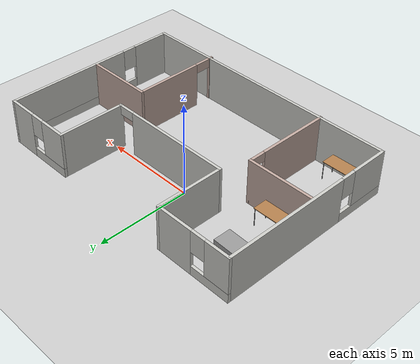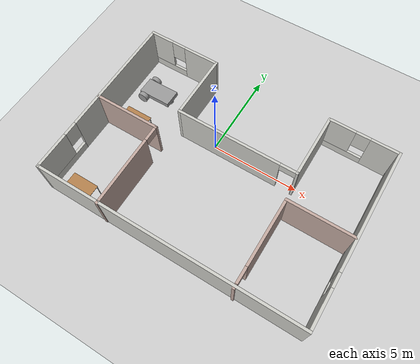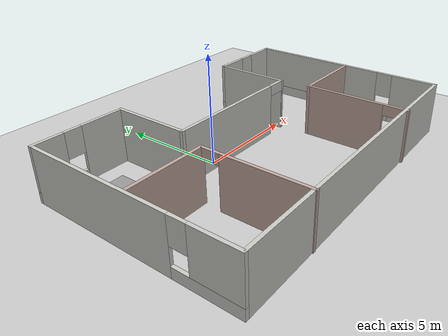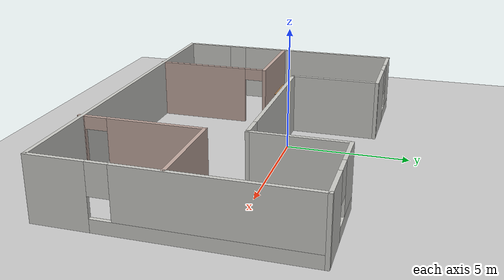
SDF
<sdf version="1.6">
 <world name="default">
  <model name="ground_plane">
   <static>1</static>
   <link name="link">
    <collision name="collision">
     <geometry><plane><normal>0 0 1</normal><size>100 100</size></plane></geometry>
     <surface>
      <contact><collide_bitmask>65535</collide_bitmask></contact>
      <friction><ode><mu>100</mu><mu2>50</mu2></ode></friction>
     </surface>
    </collision>
    <visual name="visual">
     <cast_shadows>0</cast_shadows>
     <geometry><plane><normal>0 0 1</normal><size>100 100</size></plane></geometry>
     <material>
      <script><uri>file://media/materials/scripts/gazebo.material</uri><name>Gazebo/Grey</name></script>
     </material>
    </visual>
   </link>
  </model>
  <model name="model">
   <pose>1.27977 -1.64783 0 0 -0 0</pose>
   <link name="Wall_1">
    <pose>-7.425 0.045582 0 0 0 -1.5708</pose>
    <visual name="Wall_1_Visual_0">
     <pose>-1.46661 0 1.25 0 -0 0</pose>
     <geometry><box><size>7.06677 0.15 2.5</size></box></geometry>
     <material>
      <script><uri>file://media/materials/scripts/gazebo.material</uri><name>Gazebo/CeilingTiled</name></script>
      <ambient>1 1 1 1</ambient>
     </material>
     <meta><layer>0</layer></meta>
    </visual>
    <collision name="Wall_1_Collision_0">
     <geometry><box><size>7.06677 0.15 2.5</size></box></geometry>
     <pose>-1.46661 0 1.25 0 -0 0</pose>
    </collision>
    <visual name="Wall_1_Visual_1">
     <pose>3.53339 0 0.25 0 -0 0</pose>
     <geometry><box><size>2.93323 0.15 0.5</size></box></geometry>
     <material>
      <script><uri>file://media/materials/scripts/gazebo.material</uri><name>Gazebo/CeilingTiled</name></script>
      <ambient>1 1 1 1</ambient>
     </material>
     <meta><layer>0</layer></meta>
    </visual>
    <collision name="Wall_1_Collision_1">
     <geometry><box><size>2.93323 0.15 0.5</size></box></geometry>
     <pose>3.53339 0 0.25 0 -0 0</pose>
    </collision>
    <visual name="Wall_1_Visual_2">
     <pose>3.93339 0 1.5 0 -0 0</pose>
     <geometry><box><size>2.13323 0.15 2</size></box></geometry>
     <material>
      <script><uri>file://media/materials/scripts/gazebo.material</uri><name>Gazebo/CeilingTiled</name></script>
      <ambient>1 1 1 1</ambient>
     </material>
     <meta><layer>0</layer></meta>
    </visual>
    <collision name="Wall_1_Collision_2">
     <geometry><box><size>2.13323 0.15 2</size></box></geometry>
     <pose>3.93339 0 1.5 0 -0 0</pose>
    </collision>
    <visual name="Wall_1_Visual_3">
     <pose>2.46677 0 1.9 0 -0 0</pose>
     <geometry><box><size>0.8 0.15 1.2</size></box></geometry>
     <material>
      <script><uri>file://media/materials/scripts/gazebo.material</uri><name>Gazebo/CeilingTiled</name></script>
      <ambient>1 1 1 1</ambient>
     </material>
     <meta><layer>0</layer></meta>
    </visual>
    <collision name="Wall_1_Collision_3">
     <geometry><box><size>0.8 0.15 1.2</size></box></geometry>
     <pose>2.46677 0 1.9 0 -0 0</pose>
    </collision>
   </link>
   <link name="Wall_10">
    <collision name="Wall_10_Collision">
     <geometry><box><size>3.75 0.15 2.5</size></box></geometry>
     <pose>0 0 1.25 0 -0 0</pose>
    </collision>
    <visual name="Wall_10_Visual">
     <pose>0 0 1.25 0 -0 0</pose>
     <geometry><box><size>3.75 0.15 2.5</size></box></geometry>
     <material>
      <script><uri>file://media/materials/scripts/gazebo.material</uri><name>Gazebo/Grey</name></script>
      <ambient>0.760784 0.662745 0.627451 1</ambient>
     </material>
     <meta><layer>0</layer></meta>
    </visual>
    <pose>-5.57831 -0.067079 0 0 -0 0</pose>
   </link>
   <link name="Wall_11">
    <pose>-3.77832 -2.49208 0 0 0 -1.5708</pose>
    <visual name="Wall_11_Visual_0">
     <pose>-2.47349 0 1.25 0 -0 0</pose>
     <geometry><box><size>0.05302 0.15 2.5</size></box></geometry>
     <material>
      <script><uri>file://media/materials/scripts/gazebo.material</uri><name>Gazebo/Grey</name></script>
      <ambient>0.760784 0.662745 0.627451 1</ambient>
     </material>
     <meta><layer>0</layer></meta>
    </visual>
    <collision name="Wall_11_Collision_0">
     <geometry><box><size>0.05302 0.15 2.5</size></box></geometry>
     <pose>-2.47349 0 1.25 0 -0 0</pose>
    </collision>
    <visual name="Wall_11_Visual_1">
     <pose>0.47651 0 1.25 0 -0 0</pose>
     <geometry><box><size>4.04698 0.15 2.5</size></box></geometry>
     <material>
      <script><uri>file://media/materials/scripts/gazebo.material</uri><name>Gazebo/Grey</name></script>
      <ambient>0.760784 0.662745 0.627451 1</ambient>
     </material>
     <meta><layer>0</layer></meta>
    </visual>
    <collision name="Wall_11_Collision_1">
     <geometry><box><size>4.04698 0.15 2.5</size></box></geometry>
     <pose>0.47651 0 1.25 0 -0 0</pose>
    </collision>
    <visual name="Wall_11_Visual_2">
     <pose>-1.99698 0 2.25 0 -0 0</pose>
     <geometry><box><size>0.9 0.15 0.5</size></box></geometry>
     <material>
      <script><uri>file://media/materials/scripts/gazebo.material</uri><name>Gazebo/Grey</name></script>
      <ambient>0.760784 0.662745 0.627451 1</ambient>
     </material>
     <meta><layer>0</layer></meta>
    </visual>
    <collision name="Wall_11_Collision_2">
     <geometry><box><size>0.9 0.15 0.5</size></box></geometry>
     <pose>-1.99698 0 2.25 0 -0 0</pose>
    </collision>
   </link>
   <link name="Wall_13">
    <collision name="Wall_13_Collision">
     <geometry><box><size>3.75 0.15 2.5</size></box></geometry>
     <pose>0 0 1.25 0 -0 0</pose>
    </collision>
    <visual name="Wall_13_Visual">
     <pose>0 0 1.25 0 -0 0</pose>
     <geometry><box><size>3.75 0.15 2.5</size></box></geometry>
     <material>
      <script><uri>file://media/materials/scripts/gazebo.material</uri><name>Gazebo/Grey</name></script>
      <ambient>0.760784 0.662745 0.627451 1</ambient>
     </material>
     <meta><layer>0</layer></meta>
    </visual>
    <pose>5.56162 -0.120582 0 0 -0 3.14159</pose>
   </link>
   <link name="Wall_14">
    <pose>3.76162 -2.54558 0 0 0 -1.5708</pose>
    <visual name="Wall_14_Visual_0">
     <pose>-0.587527 0 1.25 0 -0 0</pose>
     <geometry><box><size>3.82495 0.15 2.5</size></box></geometry>
     <material>
      <script><uri>file://media/materials/scripts/gazebo.material</uri><name>Gazebo/Grey</name></script>
      <ambient>0.760784 0.662745 0.627451 1</ambient>
     </material>
     <meta><layer>0</layer></meta>
    </visual>
    <collision name="Wall_14_Collision_0">
     <geometry><box><size>3.82495 0.15 2.5</size></box></geometry>
     <pose>-0.587527 0 1.25 0 -0 0</pose>
    </collision>
    <visual name="Wall_14_Visual_1">
     <pose>2.36247 0 1.25 0 -0 0</pose>
     <geometry><box><size>0.275054 0.15 2.5</size></box></geometry>
     <material>
      <script><uri>file://media/materials/scripts/gazebo.material</uri><name>Gazebo/Grey</name></script>
      <ambient>0.760784 0.662745 0.627451 1</ambient>
     </material>
     <meta><layer>0</layer></meta>
    </visual>
    <collision name="Wall_14_Collision_1">
     <geometry><box><size>0.275054 0.15 2.5</size></box></geometry>
     <pose>2.36247 0 1.25 0 -0 0</pose>
    </collision>
    <visual name="Wall_14_Visual_2">
     <pose>1.77495 0 2.25 0 -0 0</pose>
     <geometry><box><size>0.9 0.15 0.5</size></box></geometry>
     <material>
      <script><uri>file://media/materials/scripts/gazebo.material</uri><name>Gazebo/Grey</name></script>
      <ambient>0.760784 0.662745 0.627451 1</ambient>
     </material>
     <meta><layer>0</layer></meta>
    </visual>
    <collision name="Wall_14_Collision_2">
     <geometry><box><size>0.9 0.15 0.5</size></box></geometry>
     <pose>1.77495 0 2.25 0 -0 0</pose>
    </collision>
   </link>
   <link name="Wall_2">
    <collision name="Wall_2_Collision">
     <geometry><box><size>15 0.15 2.5</size></box></geometry>
     <pose>0 0 1.25 0 -0 0</pose>
    </collision>
    <visual name="Wall_2_Visual">
     <pose>0 0 1.25 0 -0 0</pose>
     <geometry><box><size>15 0.15 2.5</size></box></geometry>
     <material>
      <script><uri>file://media/materials/scripts/gazebo.material</uri><name>Gazebo/CeilingTiled</name></script>
      <ambient>1 1 1 1</ambient>
     </material>
     <meta><layer>0</layer></meta>
    </visual>
    <pose>0 -4.87942 0 0 -0 0</pose>
   </link>
   <link name="Wall_3">
    <pose>7.425 0.045582 0 0 -0 1.5708</pose>
    <visual name="Wall_3_Visual_0">
     <pose>-3.89326 0 1.25 0 -0 0</pose>
     <geometry><box><size>2.21348 0.15 2.5</size></box></geometry>
     <material>
      <script><uri>file://media/materials/scripts/gazebo.material</uri><name>Gazebo/CeilingTiled</name></script>
      <ambient>1 1 1 1</ambient>
     </material>
     <meta><layer>0</layer></meta>
    </visual>
    <collision name="Wall_3_Collision_0">
     <geometry><box><size>2.21348 0.15 2.5</size></box></geometry>
     <pose>-3.89326 0 1.25 0 -0 0</pose>
    </collision>
    <visual name="Wall_3_Visual_1">
     <pose>1.10674 0 0.25 0 -0 0</pose>
     <geometry><box><size>7.78652 0.15 0.5</size></box></geometry>
     <material>
      <script><uri>file://media/materials/scripts/gazebo.material</uri><name>Gazebo/CeilingTiled</name></script>
      <ambient>1 1 1 1</ambient>
     </material>
     <meta><layer>0</layer></meta>
    </visual>
    <collision name="Wall_3_Collision_1">
     <geometry><box><size>7.78652 0.15 0.5</size></box></geometry>
     <pose>1.10674 0 0.25 0 -0 0</pose>
    </collision>
    <visual name="Wall_3_Visual_2">
     <pose>1.50674 0 1.5 0 -0 0</pose>
     <geometry><box><size>6.98652 0.15 2</size></box></geometry>
     <material>
      <script><uri>file://media/materials/scripts/gazebo.material</uri><name>Gazebo/CeilingTiled</name></script>
      <ambient>1 1 1 1</ambient>
     </material>
     <meta><layer>0</layer></meta>
    </visual>
    <collision name="Wall_3_Collision_2">
     <geometry><box><size>6.98652 0.15 2</size></box></geometry>
     <pose>1.50674 0 1.5 0 -0 0</pose>
    </collision>
    <visual name="Wall_3_Visual_3">
     <pose>-2.38652 0 1.9 0 -0 0</pose>
     <geometry><box><size>0.8 0.15 1.2</size></box></geometry>
     <material>
      <script><uri>file://media/materials/scripts/gazebo.material</uri><name>Gazebo/CeilingTiled</name></script>
      <ambient>1 1 1 1</ambient>
     </material>
     <meta><layer>0</layer></meta>
    </visual>
    <collision name="Wall_3_Collision_3">
     <geometry><box><size>0.8 0.15 1.2</size></box></geometry>
     <pose>-2.38652 0 1.9 0 -0 0</pose>
    </collision>
   </link>
   <link name="Wall_4">
    <pose>5.5 4.97058 0 0 -0 3.14159</pose>
    <visual name="Wall_4_Visual_0">
     <pose>-1.18114 0 1.25 0 -0 0</pose>
     <geometry><box><size>1.63771 0.15 2.5</size></box></geometry>
     <material>
      <script><uri>file://media/materials/scripts/gazebo.material</uri><name>Gazebo/CeilingTiled</name></script>
      <ambient>1 1 1 1</ambient>
     </material>
     <meta><layer>0</layer></meta>
    </visual>
    <collision name="Wall_4_Collision_0">
     <geometry><box><size>1.63771 0.15 2.5</size></box></geometry>
     <pose>-1.18114 0 1.25 0 -0 0</pose>
    </collision>
    <visual name="Wall_4_Visual_1">
     <pose>0.818857 0 0.25 0 -0 0</pose>
     <geometry><box><size>2.36229 0.15 0.5</size></box></geometry>
     <material>
      <script><uri>file://media/materials/scripts/gazebo.material</uri><name>Gazebo/CeilingTiled</name></script>
      <ambient>1 1 1 1</ambient>
     </material>
     <meta><layer>0</layer></meta>
    </visual>
    <collision name="Wall_4_Collision_1">
     <geometry><box><size>2.36229 0.15 0.5</size></box></geometry>
     <pose>0.818857 0 0.25 0 -0 0</pose>
    </collision>
    <visual name="Wall_4_Visual_2">
     <pose>1.21886 0 1.5 0 -0 0</pose>
     <geometry><box><size>1.56229 0.15 2</size></box></geometry>
     <material>
      <script><uri>file://media/materials/scripts/gazebo.material</uri><name>Gazebo/CeilingTiled</name></script>
      <ambient>1 1 1 1</ambient>
     </material>
     <meta><layer>0</layer></meta>
    </visual>
    <collision name="Wall_4_Collision_2">
     <geometry><box><size>1.56229 0.15 2</size></box></geometry>
     <pose>1.21886 0 1.5 0 -0 0</pose>
    </collision>
    <visual name="Wall_4_Visual_3">
     <pose>0.037714 0 1.9 0 -0 0</pose>
     <geometry><box><size>0.8 0.15 1.2</size></box></geometry>
     <material>
      <script><uri>file://media/materials/scripts/gazebo.material</uri><name>Gazebo/CeilingTiled</name></script>
      <ambient>1 1 1 1</ambient>
     </material>
     <meta><layer>0</layer></meta>
    </visual>
    <collision name="Wall_4_Collision_3">
     <geometry><box><size>0.8 0.15 1.2</size></box></geometry>
     <pose>0.037714 0 1.9 0 -0 0</pose>
    </collision>
   </link>
   <link name="Wall_5">
    <collision name="Wall_5_Collision">
     <geometry><box><size>3.75 0.15 2.5</size></box></geometry>
     <pose>0 0 1.25 0 -0 0</pose>
    </collision>
    <visual name="Wall_5_Visual">
     <pose>0 0 1.25 0 -0 0</pose>
     <geometry><box><size>3.75 0.15 2.5</size></box></geometry>
     <material>
      <script><uri>file://media/materials/scripts/gazebo.material</uri><name>Gazebo/CeilingTiled</name></script>
      <ambient>1 1 1 1</ambient>
     </material>
     <meta><layer>0</layer></meta>
    </visual>
    <pose>3.575 3.17058 0 0 0 -1.5708</pose>
   </link>
   <link name="Wall_6">
    <pose>0.15 1.37058 0 0 -0 3.14159</pose>
    <visual name="Wall_6_Visual_0">
     <pose>-3.44071 0 1.25 0 -0 0</pose>
     <geometry><box><size>0.118576 0.15 2.5</size></box></geometry>
     <material>
      <script><uri>file://media/materials/scripts/gazebo.material</uri><name>Gazebo/CeilingTiled</name></script>
      <ambient>1 1 1 1</ambient>
     </material>
     <meta><layer>0</layer></meta>
    </visual>
    <collision name="Wall_6_Collision_0">
     <geometry><box><size>0.118576 0.15 2.5</size></box></geometry>
     <pose>-3.44071 0 1.25 0 -0 0</pose>
    </collision>
    <visual name="Wall_6_Visual_1">
     <pose>0.509288 0 1.25 0 -0 0</pose>
     <geometry><box><size>5.98142 0.15 2.5</size></box></geometry>
     <material>
      <script><uri>file://media/materials/scripts/gazebo.material</uri><name>Gazebo/CeilingTiled</name></script>
      <ambient>1 1 1 1</ambient>
     </material>
     <meta><layer>0</layer></meta>
    </visual>
    <collision name="Wall_6_Collision_1">
     <geometry><box><size>5.98142 0.15 2.5</size></box></geometry>
     <pose>0.509288 0 1.25 0 -0 0</pose>
    </collision>
    <visual name="Wall_6_Visual_2">
     <pose>-2.93142 0 2.25 0 -0 0</pose>
     <geometry><box><size>0.9 0.15 0.5</size></box></geometry>
     <material>
      <script><uri>file://media/materials/scripts/gazebo.material</uri><name>Gazebo/CeilingTiled</name></script>
      <ambient>1 1 1 1</ambient>
     </material>
     <meta><layer>0</layer></meta>
    </visual>
    <collision name="Wall_6_Collision_2">
     <geometry><box><size>0.9 0.15 0.5</size></box></geometry>
     <pose>-2.93142 0 2.25 0 -0 0</pose>
    </collision>
   </link>
   <link name="Wall_7">
    <collision name="Wall_7_Collision">
     <geometry><box><size>3.75 0.15 2.5</size></box></geometry>
     <pose>0 0 1.25 0 -0 0</pose>
    </collision>
    <visual name="Wall_7_Visual">
     <pose>0 0 1.25 0 -0 0</pose>
     <geometry><box><size>3.75 0.15 2.5</size></box></geometry>
     <material>
      <script><uri>file://media/materials/scripts/gazebo.material</uri><name>Gazebo/CeilingTiled</name></script>
      <ambient>1 1 1 1</ambient>
     </material>
     <meta><layer>0</layer></meta>
    </visual>
    <pose>-3.275 3.17058 0 0 -0 1.5708</pose>
   </link>
   <link name="Wall_8">
    <pose>-5.35 4.97058 0 0 -0 3.14159</pose>
    <visual name="Wall_8_Visual_0">
     <pose>-1.10351 0 1.25 0 -0 0</pose>
     <geometry><box><size>2.09299 0.15 2.5</size></box></geometry>
     <material>
      <script><uri>file://media/materials/scripts/gazebo.material</uri><name>Gazebo/CeilingTiled</name></script>
      <ambient>1 1 1 1</ambient>
     </material>
     <meta><layer>0</layer></meta>
    </visual>
    <collision name="Wall_8_Collision_0">
     <geometry><box><size>2.09299 0.15 2.5</size></box></geometry>
     <pose>-1.10351 0 1.25 0 -0 0</pose>
    </collision>
    <visual name="Wall_8_Visual_1">
     <pose>1.04649 0 0.25 0 -0 0</pose>
     <geometry><box><size>2.20701 0.15 0.5</size></box></geometry>
     <material>
      <script><uri>file://media/materials/scripts/gazebo.material</uri><name>Gazebo/CeilingTiled</name></script>
      <ambient>1 1 1 1</ambient>
     </material>
     <meta><layer>0</layer></meta>
    </visual>
    <collision name="Wall_8_Collision_1">
     <geometry><box><size>2.20701 0.15 0.5</size></box></geometry>
     <pose>1.04649 0 0.25 0 -0 0</pose>
    </collision>
    <visual name="Wall_8_Visual_2">
     <pose>1.44649 0 1.5 0 -0 0</pose>
     <geometry><box><size>1.40701 0.15 2</size></box></geometry>
     <material>
      <script><uri>file://media/materials/scripts/gazebo.material</uri><name>Gazebo/CeilingTiled</name></script>
      <ambient>1 1 1 1</ambient>
     </material>
     <meta><layer>0</layer></meta>
    </visual>
    <collision name="Wall_8_Collision_2">
     <geometry><box><size>1.40701 0.15 2</size></box></geometry>
     <pose>1.44649 0 1.5 0 -0 0</pose>
    </collision>
    <visual name="Wall_8_Visual_3">
     <pose>0.342986 0 1.9 0 -0 0</pose>
     <geometry><box><size>0.8 0.15 1.2</size></box></geometry>
     <material>
      <script><uri>file://media/materials/scripts/gazebo.material</uri><name>Gazebo/CeilingTiled</name></script>
      <ambient>1 1 1 1</ambient>
     </material>
     <meta><layer>0</layer></meta>
    </visual>
    <collision name="Wall_8_Collision_3">
     <geometry><box><size>0.8 0.15 1.2</size></box></geometry>
     <pose>0.342986 0 1.9 0 -0 0</pose>
    </collision>
   </link>
   <static>1</static>
  </model>
  <model name="table_2">
   <static>1</static>
   <link name="link">
    <collision name="surface">
     <pose>0 0 1 0 -0 0</pose>
     <geometry><box><size>1.5 0.8 0.03</size></box></geometry>
     <surface><friction><ode><mu>0.6</mu><mu2>0.6</mu2></ode></friction></surface>
    </collision>
    <visual name="visual1">
     <pose>0 0 1 0 -0 0</pose>
     <geometry><box><size>1.5 0.8 0.03</size></box></geometry>
     <material>
      <script><uri>file://media/materials/scripts/gazebo.material</uri><name>Gazebo/Wood</name></script>
     </material>
    </visual>
    <collision name="front_left_leg">
     <pose>0.68 0.38 0.5 0 -0 0</pose>
     <geometry><cylinder><radius>0.02</radius><length>1</length></cylinder></geometry>
    </collision>
    <visual name="front_left_leg">
     <pose>0.68 0.38 0.5 0 -0 0</pose>
     <geometry><cylinder><radius>0.02</radius><length>1</length></cylinder></geometry>
     <material>
      <script><uri>file://media/materials/scripts/gazebo.material</uri><name>Gazebo/Grey</name></script>
     </material>
    </visual>
    <collision name="front_right_leg">
     <pose>0.68 -0.38 0.5 0 -0 0</pose>
     <geometry><cylinder><radius>0.02</radius><length>1</length></cylinder></geometry>
    </collision>
    <visual name="front_right_leg">
     <pose>0.68 -0.38 0.5 0 -0 0</pose>
     <geometry><cylinder><radius>0.02</radius><length>1</length></cylinder></geometry>
     <material>
      <script><uri>file://media/materials/scripts/gazebo.material</uri><name>Gazebo/Grey</name></script>
     </material>
    </visual>
    <collision name="back_right_leg">
     <pose>-0.68 -0.38 0.5 0 -0 0</pose>
     <geometry><cylinder><radius>0.02</radius><length>1</length></cylinder></geometry>
    </collision>
    <visual name="back_right_leg">
     <pose>-0.68 -0.38 0.5 0 -0 0</pose>
     <geometry><cylinder><radius>0.02</radius><length>1</length></cylinder></geometry>
     <material>
      <script><uri>file://media/materials/scripts/gazebo.material</uri><name>Gazebo/Grey</name></script>
     </material>
    </visual>
    <collision name="back_left_leg">
     <pose>-0.68 0.38 0.5 0 -0 0</pose>
     <geometry><cylinder><radius>0.02</radius><length>1</length></cylinder></geometry>
    </collision>
    <visual name="back_left_leg">
     <pose>-0.68 0.38 0.5 0 -0 0</pose>
     <geometry><cylinder><radius>0.02</radius><length>1</length></cylinder></geometry>
     <material>
      <script><uri>file://media/materials/scripts/gazebo.material</uri><name>Gazebo/Grey</name></script>
     </material>
    </visual>
   </link>
   <pose>-4.41511 -5.93243 0 0 -0 0</pose>
  </model>
  <model name="table_3">
   <static>1</static>
   <link name="link">
    <collision name="surface">
     <pose>0 0 1 0 -0 0</pose>
     <geometry><box><size>1.5 0.8 0.03</size></box></geometry>
     <surface><friction><ode><mu>0.6</mu><mu2>0.6</mu2></ode></friction></surface>
    </collision>
    <visual name="visual1">
     <pose>0 0 1 0 -0 0</pose>
     <geometry><box><size>1.5 0.8 0.03</size></box></geometry>
     <material>
      <script><uri>file://media/materials/scripts/gazebo.material</uri><name>Gazebo/Wood</name></script>
     </material>
    </visual>
    <collision name="front_left_leg">
     <pose>0.68 0.38 0.5 0 -0 0</pose>
     <geometry><cylinder><radius>0.02</radius><length>1</length></cylinder></geometry>
    </collision>
    <visual name="front_left_leg">
     <pose>0.68 0.38 0.5 0 -0 0</pose>
     <geometry><cylinder><radius>0.02</radius><length>1</length></cylinder></geometry>
     <material>
      <script><uri>file://media/materials/scripts/gazebo.material</uri><name>Gazebo/Grey</name></script>
     </material>
    </visual>
    <collision name="front_right_leg">
     <pose>0.68 -0.38 0.5 0 -0 0</pose>
     <geometry><cylinder><radius>0.02</radius><length>1</length></cylinder></geometry>
    </collision>
    <visual name="front_right_leg">
     <pose>0.68 -0.38 0.5 0 -0 0</pose>
     <geometry><cylinder><radius>0.02</radius><length>1</length></cylinder></geometry>
     <material>
      <script><uri>file://media/materials/scripts/gazebo.material</uri><name>Gazebo/Grey</name></script>
     </material>
    </visual>
    <collision name="back_right_leg">
     <pose>-0.68 -0.38 0.5 0 -0 0</pose>
     <geometry><cylinder><radius>0.02</radius><length>1</length></cylinder></geometry>
    </collision>
    <visual name="back_right_leg">
     <pose>-0.68 -0.38 0.5 0 -0 0</pose>
     <geometry><cylinder><radius>0.02</radius><length>1</length></cylinder></geometry>
     <material>
      <script><uri>file://media/materials/scripts/gazebo.material</uri><name>Gazebo/Grey</name></script>
     </material>
    </visual>
    <collision name="back_left_leg">
     <pose>-0.68 0.38 0.5 0 -0 0</pose>
     <geometry><cylinder><radius>0.02</radius><length>1</length></cylinder></geometry>
    </collision>
    <visual name="back_left_leg">
     <pose>-0.68 0.38 0.5 0 -0 0</pose>
     <geometry><cylinder><radius>0.02</radius><length>1</length></cylinder></geometry>
     <material>
      <script><uri>file://media/materials/scripts/gazebo.material</uri><name>Gazebo/Grey</name></script>
     </material>
    </visual>
   </link>
   <pose>-4.44626 -1.13918 0 0 -0 0</pose>
  </model>
  <model name="model_2"><static>0</static><plugin name="welcome" filename="libWelcome.so"/></model>
  <model name="model_1_clone">
   <link name="link_0">
    <pose>0.178087 -1.52563 0.267494 0 -0 0</pose>
    <inertial>
     <mass>0.51884</mass>
     <inertia>
      <ixx>0.0443989</ixx>
      <ixy>0</ixy>
      <ixz>0</ixz>
      <iyy>0.161858</iyy>
      <iyz>0</iyz>
      <izz>0.199574</izz>
     </inertia>
    </inertial>
    <visual name="visual">
     <geometry><box><size>1.91475 0.97447 0.278011</size></box></geometry>
     <material>
      <lighting>1</lighting>
      <script><uri>file://media/materials/scripts/gazebo.material</uri><name>Gazebo/Grey</name></script>
      <shader type="pixel"><normal_map>__default__</normal_map></shader>
      <ambient>0.3 0.3 0.3 1</ambient>
      <diffuse>0.7 0.7 0.7 1</diffuse>
      <specular>0.01 0.01 0.01 1</specular>
      <emissive>0 0 0 1</emissive>
     </material>
    </visual>
    <collision name="collision">
     <geometry><box><size>1.91475 0.97447 0.278011</size></box></geometry>
     <surface>
      <friction>
       <ode><mu>1</mu><mu2>1</mu2><fdir1>0 0 0</fdir1><slip1>0</slip1><slip2>0</slip2></ode>
       <torsional>
        <coefficient>1</coefficient>
        <patch_radius>0</patch_radius>
        <surface_radius>0</surface_radius>
        <use_patch_radius>1</use_patch_radius>
        <ode><slip>0</slip></ode>
       </torsional>
      </friction>
      <bounce><restitution_coefficient>0</restitution_coefficient><threshold>1e+06</threshold></bounce>
      <contact>
       <collide_without_contact>0</collide_without_contact>
       <collide_without_contact_bitmask>1</collide_without_contact_bitmask>
       <collide_bitmask>1</collide_bitmask>
       <ode>
        <soft_cfm>0</soft_cfm>
        <soft_erp>0.2</soft_erp>
        <kp>1e+13</kp>
        <kd>1</kd>
        <max_vel>0.01</max_vel>
        <min_depth>0</min_depth>
       </ode>
       <bullet>
        <split_impulse>1</split_impulse>
        <split_impulse_penetration_threshold>-0.01</split_impulse_penetration_threshold>
        <soft_cfm>0</soft_cfm>
        <soft_erp>0.2</soft_erp>
        <kp>1e+13</kp>
        <kd>1</kd>
       </bullet>
      </contact>
     </surface>
    </collision>
   </link>
   <link name="link_1">
    <pose>-0.479288 -0.898366 0.167494 1.5707 -0 0</pose>
    <inertial>
     <mass>1</mass>
     <inertia><ixx>0.145833</ixx><ixy>0</ixy><ixz>0</ixz><iyy>0.145833</iyy><iyz>0</iyz><izz>0.125</izz></inertia>
    </inertial>
    <visual name="visual">
     <geometry><cylinder><radius>0.3</radius><length>0.25</length></cylinder></geometry>
     <material>
      <lighting>1</lighting>
      <script><uri>file://media/materials/scripts/gazebo.material</uri><name>Gazebo/Grey</name></script>
      <shader type="pixel"><normal_map>__default__</normal_map></shader>
      <ambient>0.3 0.3 0.3 1</ambient>
      <diffuse>0.7 0.7 0.7 1</diffuse>
      <specular>0.01 0.01 0.01 1</specular>
      <emissive>0 0 0 1</emissive>
     </material>
    </visual>
    <collision name="collision">
     <geometry><cylinder><radius>0.3</radius><length>0.25</length></cylinder></geometry>
     <surface>
      <friction>
       <ode><mu>1</mu><mu2>1</mu2><fdir1>0 0 0</fdir1><slip1>0</slip1><slip2>0</slip2></ode>
       <torsional>
        <coefficient>1</coefficient>
        <patch_radius>0</patch_radius>
        <surface_radius>0</surface_radius>
        <use_patch_radius>1</use_patch_radius>
        <ode><slip>0</slip></ode>
       </torsional>
      </friction>
      <bounce><restitution_coefficient>0</restitution_coefficient><threshold>1e+06</threshold></bounce>
      <contact>
       <collide_without_contact>0</collide_without_contact>
       <collide_without_contact_bitmask>1</collide_without_contact_bitmask>
       <collide_bitmask>1</collide_bitmask>
       <ode>
        <soft_cfm>0</soft_cfm>
        <soft_erp>0.2</soft_erp>
        <kp>1e+13</kp>
        <kd>1</kd>
        <max_vel>0.01</max_vel>
        <min_depth>0</min_depth>
       </ode>
       <bullet>
        <split_impulse>1</split_impulse>
        <split_impulse_penetration_threshold>-0.01</split_impulse_penetration_threshold>
        <soft_cfm>0</soft_cfm>
        <soft_erp>0.2</soft_erp>
        <kp>1e+13</kp>
        <kd>1</kd>
       </bullet>
      </contact>
     </surface>
    </collision>
   </link>
   <link name="link_1_clone">
    <pose>-0.479288 -2.13789 0.167494 1.5707 -0 0</pose>
    <inertial>
     <mass>1</mass>
     <inertia><ixx>0.145833</ixx><ixy>0</ixy><ixz>0</ixz><iyy>0.145833</iyy><iyz>0</iyz><izz>0.125</izz></inertia>
    </inertial>
    <visual name="visual">
     <geometry><cylinder><radius>0.3</radius><length>0.25</length></cylinder></geometry>
     <material>
      <lighting>1</lighting>
      <script><uri>file://media/materials/scripts/gazebo.material</uri><name>Gazebo/Grey</name></script>
      <shader type="pixel"><normal_map>__default__</normal_map></shader>
      <ambient>0.3 0.3 0.3 1</ambient>
      <diffuse>0.7 0.7 0.7 1</diffuse>
      <specular>0.01 0.01 0.01 1</specular>
      <emissive>0 0 0 1</emissive>
     </material>
    </visual>
    <collision name="collision">
     <geometry><cylinder><radius>0.3</radius><length>0.25</length></cylinder></geometry>
     <surface>
      <friction>
       <ode><mu>1</mu><mu2>1</mu2><fdir1>0 0 0</fdir1><slip1>0</slip1><slip2>0</slip2></ode>
       <torsional>
        <coefficient>1</coefficient>
        <patch_radius>0</patch_radius>
        <surface_radius>0</surface_radius>
        <use_patch_radius>1</use_patch_radius>
        <ode><slip>0</slip></ode>
       </torsional>
      </friction>
      <bounce><restitution_coefficient>0</restitution_coefficient><threshold>1e+06</threshold></bounce>
      <contact>
       <collide_without_contact>0</collide_without_contact>
       <collide_without_contact_bitmask>1</collide_without_contact_bitmask>
       <collide_bitmask>1</collide_bitmask>
       <ode>
        <soft_cfm>0</soft_cfm>
        <soft_erp>0.2</soft_erp>
        <kp>1e+13</kp>
        <kd>1</kd>
        <max_vel>0.01</max_vel>
        <min_depth>0</min_depth>
       </ode>
       <bullet>
        <split_impulse>1</split_impulse>
        <split_impulse_penetration_threshold>-0.01</split_impulse_penetration_threshold>
        <soft_cfm>0</soft_cfm>
        <soft_erp>0.2</soft_erp>
        <kp>1e+13</kp>
        <kd>1</kd>
       </bullet>
      </contact>
     </surface>
    </collision>
   </link>
   <link name="link_2">
    <pose>0.935461 -1.52563 0.015594 0 -0 0</pose>
    <inertial>
     <mass>1</mass>
     <inertia><ixx>0.1</ixx><ixy>0</ixy><ixz>0</ixz><iyy>0.1</iyy><iyz>0</iyz><izz>0.1</izz></inertia>
    </inertial>
    <visual name="visual">
     <geometry><sphere><radius>0.2</radius></sphere></geometry>
     <material>
      <lighting>1</lighting>
      <script><uri>file://media/materials/scripts/gazebo.material</uri><name>Gazebo/Grey</name></script>
      <shader type="pixel"><normal_map>__default__</normal_map></shader>
      <ambient>0.3 0.3 0.3 1</ambient>
      <diffuse>0.7 0.7 0.7 1</diffuse>
      <specular>0.01 0.01 0.01 1</specular>
      <emissive>0 0 0 1</emissive>
     </material>
    </visual>
    <collision name="collision">
     <geometry><sphere><radius>0.2</radius></sphere></geometry>
     <surface>
      <friction>
       <ode><mu>1</mu><mu2>1</mu2><fdir1>0 0 0</fdir1><slip1>0</slip1><slip2>0</slip2></ode>
       <torsional>
        <coefficient>1</coefficient>
        <patch_radius>0</patch_radius>
        <surface_radius>0</surface_radius>
        <use_patch_radius>1</use_patch_radius>
        <ode><slip>0</slip></ode>
       </torsional>
      </friction>
      <bounce><restitution_coefficient>0</restitution_coefficient><threshold>1e+06</threshold></bounce>
      <contact>
       <collide_without_contact>0</collide_without_contact>
       <collide_without_contact_bitmask>1</collide_without_contact_bitmask>
       <collide_bitmask>1</collide_bitmask>
       <ode>
        <soft_cfm>0</soft_cfm>
        <soft_erp>0.2</soft_erp>
        <kp>1e+13</kp>
        <kd>1</kd>
        <max_vel>0.01</max_vel>
        <min_depth>0</min_depth>
       </ode>
       <bullet>
        <split_impulse>1</split_impulse>
        <split_impulse_penetration_threshold>-0.01</split_impulse_penetration_threshold>
        <soft_cfm>0</soft_cfm>
        <soft_erp>0.2</soft_erp>
        <kp>1e+13</kp>
        <kd>1</kd>
       </bullet>
      </contact>
     </surface>
    </collision>
   </link>
   <joint name="link_0_JOINT_0" type="revolute">
    <parent>link_0</parent>
    <child>link_1</child>
    <axis>
     <xyz>0 0 1</xyz>
     <use_parent_model_frame>0</use_parent_model_frame>
     <limit>
      <lower>-1.79769e+308</lower>
      <upper>1.79769e+308</upper>
      <effort>-1</effort>
      <velocity>-1</velocity>
     </limit>
     <dynamics>
      <spring_reference>0</spring_reference>
      <spring_stiffness>0</spring_stiffness>
      <damping>0</damping>
     </dynamics>
    </axis>
    <physics>
     <ode><limit><cfm>0</cfm><erp>0.2</erp></limit><suspension><cfm>0</cfm><erp>0.2</erp></suspension></ode>
    </physics>
   </joint>
   <joint name="link_0_JOINT_1" type="revolute">
    <parent>link_0</parent>
    <child>link_1_clone</child>
    <axis>
     <xyz>0 0 1</xyz>
     <use_parent_model_frame>0</use_parent_model_frame>
     <limit>
      <lower>-1.79769e+308</lower>
      <upper>1.79769e+308</upper>
      <effort>-1</effort>
      <velocity>-1</velocity>
     </limit>
     <dynamics>
      <spring_reference>0</spring_reference>
      <spring_stiffness>0</spring_stiffness>
      <damping>0</damping>
     </dynamics>
    </axis>
    <physics>
     <ode><limit><cfm>0</cfm><erp>0.2</erp></limit><suspension><cfm>0</cfm><erp>0.2</erp></suspension></ode>
    </physics>
   </joint>
   <joint name="link_0_JOINT_3" type="revolute">
    <parent>link_0</parent>
    <child>link_1</child>
    <axis>
     <xyz>1 0 0</xyz>
     <use_parent_model_frame>0</use_parent_model_frame>
     <limit>
      <lower>-1.79769e+308</lower>
      <upper>1.79769e+308</upper>
      <effort>-1</effort>
      <velocity>-1</velocity>
     </limit>
     <dynamics>
      <spring_reference>0</spring_reference>
      <spring_stiffness>0</spring_stiffness>
      <damping>0</damping>
     </dynamics>
    </axis>
    <physics>
     <ode><limit><cfm>0</cfm><erp>0.2</erp></limit><suspension><cfm>0</cfm><erp>0.2</erp></suspension></ode>
    </physics>
   </joint>
   <joint name="link_0_JOINT_4" type="revolute">
    <parent>link_0</parent>
    <child>link_1_clone</child>
    <axis>
     <xyz>0 0 1</xyz>
     <use_parent_model_frame>0</use_parent_model_frame>
     <limit>
      <lower>-1.79769e+308</lower>
      <upper>1.79769e+308</upper>
      <effort>-1</effort>
      <velocity>-1</velocity>
     </limit>
     <dynamics>
      <spring_reference>0</spring_reference>
      <spring_stiffness>0</spring_stiffness>
      <damping>0</damping>
     </dynamics>
    </axis>
    <physics>
     <ode><limit><cfm>0</cfm><erp>0.2</erp></limit><suspension><cfm>0</cfm><erp>0.2</erp></suspension></ode>
    </physics>
   </joint>
   <joint name="link_0_JOINT_5" type="revolute">
    <parent>link_0</parent>
    <child>link_1</child>
    <axis>
     <xyz>0 0 1</xyz>
     <use_parent_model_frame>0</use_parent_model_frame>
     <limit>
      <lower>-1.79769e+308</lower>
      <upper>1.79769e+308</upper>
      <effort>-1</effort>
      <velocity>-1</velocity>
     </limit>
     <dynamics>
      <spring_reference>0</spring_reference>
      <spring_stiffness>0</spring_stiffness>
      <damping>0</damping>
     </dynamics>
    </axis>
    <physics>
     <ode><limit><cfm>0</cfm><erp>0.2</erp></limit><suspension><cfm>0</cfm><erp>0.2</erp></suspension></ode>
    </physics>
   </joint>
   <joint name="link_0_JOINT_6" type="revolute">
    <parent>link_0</parent>
    <child>link_1</child>
    <axis>
     <xyz>0 0 1</xyz>
     <use_parent_model_frame>0</use_parent_model_frame>
     <limit>
      <lower>-1.79769e+308</lower>
      <upper>1.79769e+308</upper>
      <effort>-1</effort>
      <velocity>-1</velocity>
     </limit>
     <dynamics>
      <spring_reference>0</spring_reference>
      <spring_stiffness>0</spring_stiffness>
      <damping>0</damping>
     </dynamics>
    </axis>
    <physics>
     <ode><limit><cfm>0</cfm><erp>0.2</erp></limit><suspension><cfm>0</cfm><erp>0.2</erp></suspension></ode>
    </physics>
   </joint>
   <joint name="link_0_JOINT_7" type="revolute">
    <parent>link_0</parent>
    <child>link_1_clone</child>
    <axis>
     <xyz>0 0 1</xyz>
     <use_parent_model_frame>0</use_parent_model_frame>
     <limit>
      <lower>-1.79769e+308</lower>
      <upper>1.79769e+308</upper>
      <effort>-1</effort>
      <velocity>-1</velocity>
     </limit>
     <dynamics>
      <spring_reference>0</spring_reference>
      <spring_stiffness>0</spring_stiffness>
      <damping>0</damping>
     </dynamics>
    </axis>
    <physics>
     <ode><limit><cfm>0</cfm><erp>0.2</erp></limit><suspension><cfm>0</cfm><erp>0.2</erp></suspension></ode>
    </physics>
   </joint>
   <joint name="link_0_JOINT_8" type="ball">
    <parent>link_0</parent>
    <child>link_2</child>
    <physics>
     <ode><limit><cfm>0</cfm><erp>0.2</erp></limit><suspension><cfm>0</cfm><erp>0.2</erp></suspension></ode>
    </physics>
   </joint>
   <static>0</static>
   <pose>-4.71688 2.69212 0.150178 3e-06 -0.036615 -0.010655</pose>
  </model>
 </world>
</sdf>
